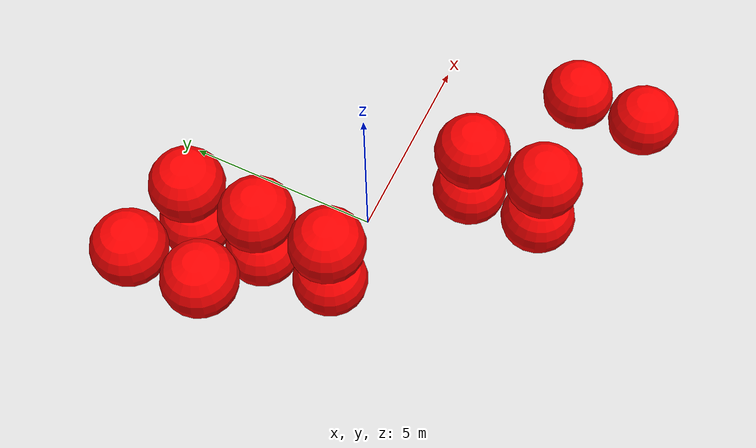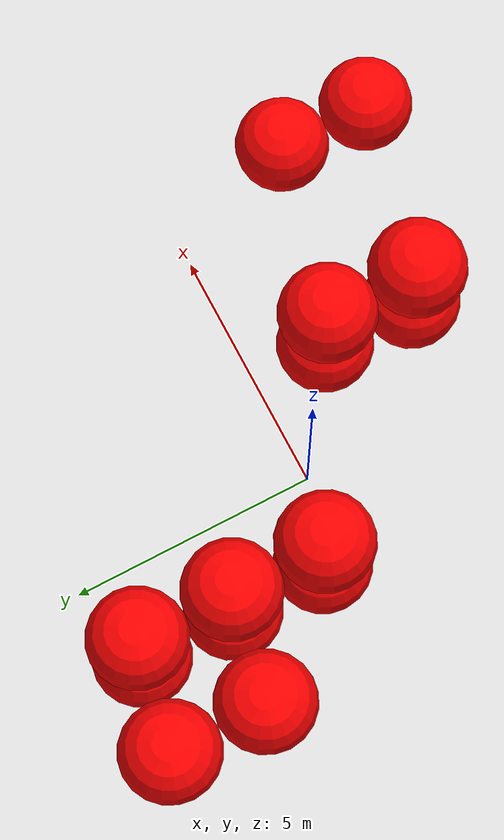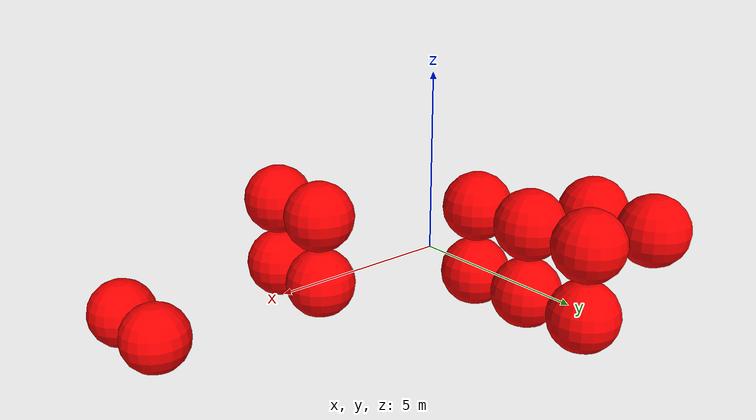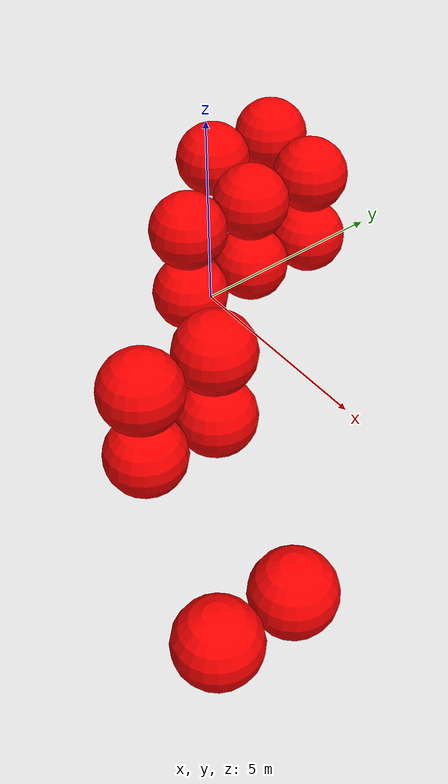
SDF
<sdf version="1.8">
 <world name="3d_world">
  <model name="obstacle_1" canonical_link="obstacle">
   <static>true</static>
   <pose relative_to="world">-1.45 0.41 -1.00 0 0 0</pose>
   <link name="obstacle">
    <pose relative_to="__model__">0.0 0 0.0 0 0 0</pose>
    <visual name="visual">
     <geometry><sphere><radius>1.00</radius></sphere></geometry>
     <material>
      <ambient>1.0 0.0 0.0 1</ambient>
      <diffuse>1.0 0.0 0.0 1</diffuse>
      <specular>1.0 0.0 0.0 1</specular>
     </material>
    </visual>
    <collision name="collision"><geometry><sphere><radius>1.00</radius></sphere></geometry></collision>
    <enable_gravity>false</enable_gravity>
   </link>
   <plugin filename="ignition-gazebo-velocity-control-system" name="ignition::gazebo::systems::VelocityControl">
    <initial_linear>0.00 0.00 0.00</initial_linear>
    <initial_angular>0 0 0</initial_angular>
   </plugin>
   <plugin filename="ignition-gazebo-odometry-publisher-system" name="ignition::gazebo::systems::OdometryPublisher">
    <dimensions>3</dimensions>
   </plugin>
  </model>
  <model name="obstacle_2" canonical_link="obstacle">
   <static>true</static>
   <pose relative_to="world">-1.45 2.41 -1.00 0 0 0</pose>
   <link name="obstacle">
    <pose relative_to="__model__">0.0 0 0.0 0 0 0</pose>
    <visual name="visual">
     <geometry><sphere><radius>1.00</radius></sphere></geometry>
     <material>
      <ambient>1.0 0.0 0.0 1</ambient>
      <diffuse>1.0 0.0 0.0 1</diffuse>
      <specular>1.0 0.0 0.0 1</specular>
     </material>
    </visual>
    <collision name="collision"><geometry><sphere><radius>1.00</radius></sphere></geometry></collision>
    <enable_gravity>false</enable_gravity>
   </link>
   <plugin filename="ignition-gazebo-velocity-control-system" name="ignition::gazebo::systems::VelocityControl">
    <initial_linear>0.00 0.00 0.00</initial_linear>
    <initial_angular>0 0 0</initial_angular>
   </plugin>
   <plugin filename="ignition-gazebo-odometry-publisher-system" name="ignition::gazebo::systems::OdometryPublisher">
    <dimensions>3</dimensions>
   </plugin>
  </model>
  <model name="obstacle_3" canonical_link="obstacle">
   <static>true</static>
   <pose relative_to="world">-1.45 4.41 -1.00 0 0 0</pose>
   <link name="obstacle">
    <pose relative_to="__model__">0.0 0 0.0 0 0 0</pose>
    <visual name="visual">
     <geometry><sphere><radius>1.00</radius></sphere></geometry>
     <material>
      <ambient>1.0 0.0 0.0 1</ambient>
      <diffuse>1.0 0.0 0.0 1</diffuse>
      <specular>1.0 0.0 0.0 1</specular>
     </material>
    </visual>
    <collision name="collision"><geometry><sphere><radius>1.00</radius></sphere></geometry></collision>
    <enable_gravity>false</enable_gravity>
   </link>
   <plugin filename="ignition-gazebo-velocity-control-system" name="ignition::gazebo::systems::VelocityControl">
    <initial_linear>0.00 0.00 0.00</initial_linear>
    <initial_angular>0 0 0</initial_angular>
   </plugin>
   <plugin filename="ignition-gazebo-odometry-publisher-system" name="ignition::gazebo::systems::OdometryPublisher">
    <dimensions>3</dimensions>
   </plugin>
  </model>
  <model name="obstacle_4" canonical_link="obstacle">
   <static>true</static>
   <pose relative_to="world">-1.45 0.41 1.00 0 0 0</pose>
   <link name="obstacle">
    <pose relative_to="__model__">0.0 0 0.0 0 0 0</pose>
    <visual name="visual">
     <geometry><sphere><radius>1.00</radius></sphere></geometry>
     <material>
      <ambient>1.0 0.0 0.0 1</ambient>
      <diffuse>1.0 0.0 0.0 1</diffuse>
      <specular>1.0 0.0 0.0 1</specular>
     </material>
    </visual>
    <collision name="collision"><geometry><sphere><radius>1.00</radius></sphere></geometry></collision>
    <enable_gravity>false</enable_gravity>
   </link>
   <plugin filename="ignition-gazebo-velocity-control-system" name="ignition::gazebo::systems::VelocityControl">
    <initial_linear>0.00 0.00 0.00</initial_linear>
    <initial_angular>0 0 0</initial_angular>
   </plugin>
   <plugin filename="ignition-gazebo-odometry-publisher-system" name="ignition::gazebo::systems::OdometryPublisher">
    <dimensions>3</dimensions>
   </plugin>
  </model>
  <model name="obstacle_5" canonical_link="obstacle">
   <static>true</static>
   <pose relative_to="world">-1.45 2.41 1.00 0 0 0</pose>
   <link name="obstacle">
    <pose relative_to="__model__">0.0 0 0.0 0 0 0</pose>
    <visual name="visual">
     <geometry><sphere><radius>1.00</radius></sphere></geometry>
     <material>
      <ambient>1.0 0.0 0.0 1</ambient>
      <diffuse>1.0 0.0 0.0 1</diffuse>
      <specular>1.0 0.0 0.0 1</specular>
     </material>
    </visual>
    <collision name="collision"><geometry><sphere><radius>1.00</radius></sphere></geometry></collision>
    <enable_gravity>false</enable_gravity>
   </link>
   <plugin filename="ignition-gazebo-velocity-control-system" name="ignition::gazebo::systems::VelocityControl">
    <initial_linear>0.00 0.00 0.00</initial_linear>
    <initial_angular>0 0 0</initial_angular>
   </plugin>
   <plugin filename="ignition-gazebo-odometry-publisher-system" name="ignition::gazebo::systems::OdometryPublisher">
    <dimensions>3</dimensions>
   </plugin>
  </model>
  <model name="obstacle_6" canonical_link="obstacle">
   <static>true</static>
   <pose relative_to="world">-1.45 4.41 1.00 0 0 0</pose>
   <link name="obstacle">
    <pose relative_to="__model__">0.0 0 0.0 0 0 0</pose>
    <visual name="visual">
     <geometry><sphere><radius>1.00</radius></sphere></geometry>
     <material>
      <ambient>1.0 0.0 0.0 1</ambient>
      <diffuse>1.0 0.0 0.0 1</diffuse>
      <specular>1.0 0.0 0.0 1</specular>
     </material>
    </visual>
    <collision name="collision"><geometry><sphere><radius>1.00</radius></sphere></geometry></collision>
    <enable_gravity>false</enable_gravity>
   </link>
   <plugin filename="ignition-gazebo-velocity-control-system" name="ignition::gazebo::systems::VelocityControl">
    <initial_linear>0.00 0.00 0.00</initial_linear>
    <initial_angular>0 0 0</initial_angular>
   </plugin>
   <plugin filename="ignition-gazebo-odometry-publisher-system" name="ignition::gazebo::systems::OdometryPublisher">
    <dimensions>3</dimensions>
   </plugin>
  </model>
  <model name="obstacle_7" canonical_link="obstacle">
   <static>true</static>
   <pose relative_to="world">2.56 -3.78 -1.00 0 0 0</pose>
   <link name="obstacle">
    <pose relative_to="__model__">0.0 0 0.0 0 0 0</pose>
    <visual name="visual">
     <geometry><sphere><radius>1.00</radius></sphere></geometry>
     <material>
      <ambient>1.0 0.0 0.0 1</ambient>
      <diffuse>1.0 0.0 0.0 1</diffuse>
      <specular>1.0 0.0 0.0 1</specular>
     </material>
    </visual>
    <collision name="collision"><geometry><sphere><radius>1.00</radius></sphere></geometry></collision>
    <enable_gravity>false</enable_gravity>
   </link>
   <plugin filename="ignition-gazebo-velocity-control-system" name="ignition::gazebo::systems::VelocityControl">
    <initial_linear>0.00 0.00 0.00</initial_linear>
    <initial_angular>0 0 0</initial_angular>
   </plugin>
   <plugin filename="ignition-gazebo-odometry-publisher-system" name="ignition::gazebo::systems::OdometryPublisher">
    <dimensions>3</dimensions>
   </plugin>
  </model>
  <model name="obstacle_8" canonical_link="obstacle">
   <static>true</static>
   <pose relative_to="world">2.56 -1.78 -1.00 0 0 0</pose>
   <link name="obstacle">
    <pose relative_to="__model__">0.0 0 0.0 0 0 0</pose>
    <visual name="visual">
     <geometry><sphere><radius>1.00</radius></sphere></geometry>
     <material>
      <ambient>1.0 0.0 0.0 1</ambient>
      <diffuse>1.0 0.0 0.0 1</diffuse>
      <specular>1.0 0.0 0.0 1</specular>
     </material>
    </visual>
    <collision name="collision"><geometry><sphere><radius>1.00</radius></sphere></geometry></collision>
    <enable_gravity>false</enable_gravity>
   </link>
   <plugin filename="ignition-gazebo-velocity-control-system" name="ignition::gazebo::systems::VelocityControl">
    <initial_linear>0.00 0.00 0.00</initial_linear>
    <initial_angular>0 0 0</initial_angular>
   </plugin>
   <plugin filename="ignition-gazebo-odometry-publisher-system" name="ignition::gazebo::systems::OdometryPublisher">
    <dimensions>3</dimensions>
   </plugin>
  </model>
  <model name="obstacle_9" canonical_link="obstacle">
   <static>true</static>
   <pose relative_to="world">2.56 -3.78 1.00 0 0 0</pose>
   <link name="obstacle">
    <pose relative_to="__model__">0.0 0 0.0 0 0 0</pose>
    <visual name="visual">
     <geometry><sphere><radius>1.00</radius></sphere></geometry>
     <material>
      <ambient>1.0 0.0 0.0 1</ambient>
      <diffuse>1.0 0.0 0.0 1</diffuse>
      <specular>1.0 0.0 0.0 1</specular>
     </material>
    </visual>
    <collision name="collision"><geometry><sphere><radius>1.00</radius></sphere></geometry></collision>
    <enable_gravity>false</enable_gravity>
   </link>
   <plugin filename="ignition-gazebo-velocity-control-system" name="ignition::gazebo::systems::VelocityControl">
    <initial_linear>0.00 0.00 0.00</initial_linear>
    <initial_angular>0 0 0</initial_angular>
   </plugin>
   <plugin filename="ignition-gazebo-odometry-publisher-system" name="ignition::gazebo::systems::OdometryPublisher">
    <dimensions>3</dimensions>
   </plugin>
  </model>
  <model name="obstacle_10" canonical_link="obstacle">
   <static>true</static>
   <pose relative_to="world">2.56 -1.78 1.00 0 0 0</pose>
   <link name="obstacle">
    <pose relative_to="__model__">0.0 0 0.0 0 0 0</pose>
    <visual name="visual">
     <geometry><sphere><radius>1.00</radius></sphere></geometry>
     <material>
      <ambient>1.0 0.0 0.0 1</ambient>
      <diffuse>1.0 0.0 0.0 1</diffuse>
      <specular>1.0 0.0 0.0 1</specular>
     </material>
    </visual>
    <collision name="collision"><geometry><sphere><radius>1.00</radius></sphere></geometry></collision>
    <enable_gravity>false</enable_gravity>
   </link>
   <plugin filename="ignition-gazebo-velocity-control-system" name="ignition::gazebo::systems::VelocityControl">
    <initial_linear>0.00 0.00 0.00</initial_linear>
    <initial_angular>0 0 0</initial_angular>
   </plugin>
   <plugin filename="ignition-gazebo-odometry-publisher-system" name="ignition::gazebo::systems::OdometryPublisher">
    <dimensions>3</dimensions>
   </plugin>
  </model>
  <model name="obstacle_17" canonical_link="obstacle">
   <static>true</static>
   <pose relative_to="world">-3.63 2.83 1.00 0 0 0</pose>
   <link name="obstacle">
    <pose relative_to="__model__">0.0 0 0.0 0 0 0</pose>
    <visual name="visual">
     <geometry><sphere><radius>1.00</radius></sphere></geometry>
     <material>
      <ambient>1.0 0.0 0.0 1</ambient>
      <diffuse>1.0 0.0 0.0 1</diffuse>
      <specular>1.0 0.0 0.0 1</specular>
     </material>
    </visual>
    <collision name="collision"><geometry><sphere><radius>1.00</radius></sphere></geometry></collision>
    <enable_gravity>false</enable_gravity>
   </link>
   <plugin filename="ignition-gazebo-velocity-control-system" name="ignition::gazebo::systems::VelocityControl">
    <initial_linear>0.00 0.00 0.00</initial_linear>
    <initial_angular>0 0 0</initial_angular>
   </plugin>
   <plugin filename="ignition-gazebo-odometry-publisher-system" name="ignition::gazebo::systems::OdometryPublisher">
    <dimensions>3</dimensions>
   </plugin>
  </model>
  <model name="obstacle_18" canonical_link="obstacle">
   <static>true</static>
   <pose relative_to="world">-3.63 4.83 1.00 0 0 0</pose>
   <link name="obstacle">
    <pose relative_to="__model__">0.0 0 0.0 0 0 0</pose>
    <visual name="visual">
     <geometry><sphere><radius>1.00</radius></sphere></geometry>
     <material>
      <ambient>1.0 0.0 0.0 1</ambient>
      <diffuse>1.0 0.0 0.0 1</diffuse>
      <specular>1.0 0.0 0.0 1</specular>
     </material>
    </visual>
    <collision name="collision"><geometry><sphere><radius>1.00</radius></sphere></geometry></collision>
    <enable_gravity>false</enable_gravity>
   </link>
   <plugin filename="ignition-gazebo-velocity-control-system" name="ignition::gazebo::systems::VelocityControl">
    <initial_linear>0.00 0.00 0.00</initial_linear>
    <initial_angular>0 0 0</initial_angular>
   </plugin>
   <plugin filename="ignition-gazebo-odometry-publisher-system" name="ignition::gazebo::systems::OdometryPublisher">
    <dimensions>3</dimensions>
   </plugin>
  </model>
  <model name="obstacle_25" canonical_link="obstacle">
   <static>false</static>
   <pose relative_to="world">7.09 -5.19 -1.82 0 0 0</pose>
   <link name="obstacle">
    <pose relative_to="__model__">0.0 0 0.0 0 0 0</pose>
    <visual name="visual">
     <geometry><sphere><radius>1.00</radius></sphere></geometry>
     <material>
      <ambient>1.0 0.0 0.0 1</ambient>
      <diffuse>1.0 0.0 0.0 1</diffuse>
      <specular>1.0 0.0 0.0 1</specular>
     </material>
    </visual>
    <collision name="collision"><geometry><sphere><radius>1.00</radius></sphere></geometry></collision>
    <enable_gravity>false</enable_gravity>
   </link>
   <plugin filename="ignition-gazebo-velocity-control-system" name="ignition::gazebo::systems::VelocityControl">
    <initial_linear>0.00 1.53 0.68</initial_linear>
    <initial_angular>0 0 0</initial_angular>
   </plugin>
   <plugin filename="ignition-gazebo-odometry-publisher-system" name="ignition::gazebo::systems::OdometryPublisher">
    <dimensions>3</dimensions>
   </plugin>
  </model>
  <model name="obstacle_26" canonical_link="obstacle">
   <static>false</static>
   <pose relative_to="world">7.09 -3.19 -1.82 0 0 0</pose>
   <link name="obstacle">
    <pose relative_to="__model__">0.0 0 0.0 0 0 0</pose>
    <visual name="visual">
     <geometry><sphere><radius>1.00</radius></sphere></geometry>
     <material>
      <ambient>1.0 0.0 0.0 1</ambient>
      <diffuse>1.0 0.0 0.0 1</diffuse>
      <specular>1.0 0.0 0.0 1</specular>
     </material>
    </visual>
    <collision name="collision"><geometry><sphere><radius>1.00</radius></sphere></geometry></collision>
    <enable_gravity>false</enable_gravity>
   </link>
   <plugin filename="ignition-gazebo-velocity-control-system" name="ignition::gazebo::systems::VelocityControl">
    <initial_linear>0.00 1.53 0.68</initial_linear>
    <initial_angular>0 0 0</initial_angular>
   </plugin>
   <plugin filename="ignition-gazebo-odometry-publisher-system" name="ignition::gazebo::systems::OdometryPublisher">
    <dimensions>3</dimensions>
   </plugin>
  </model>
 </world>
</sdf>
